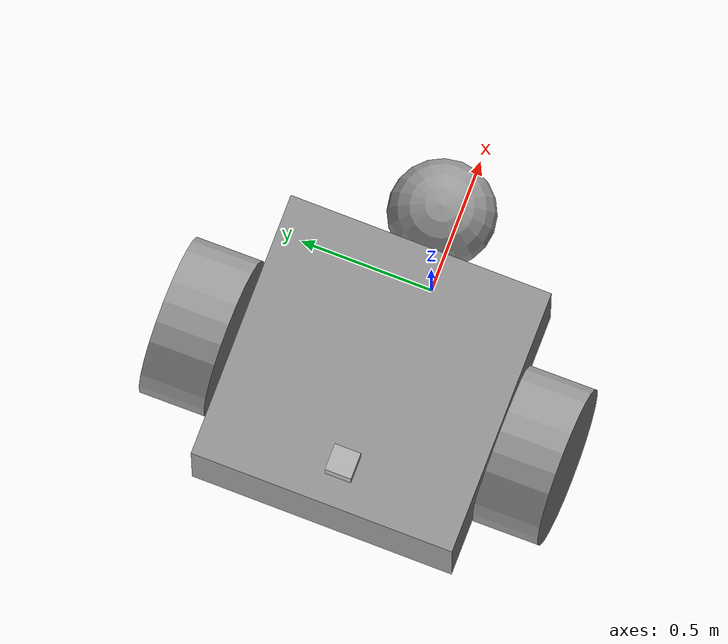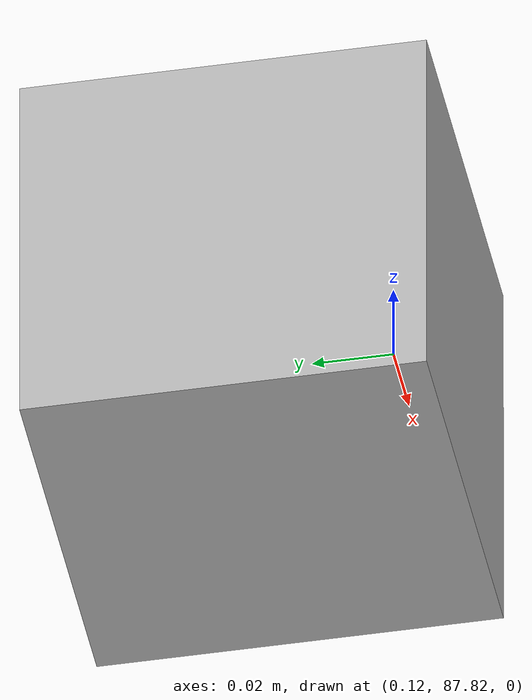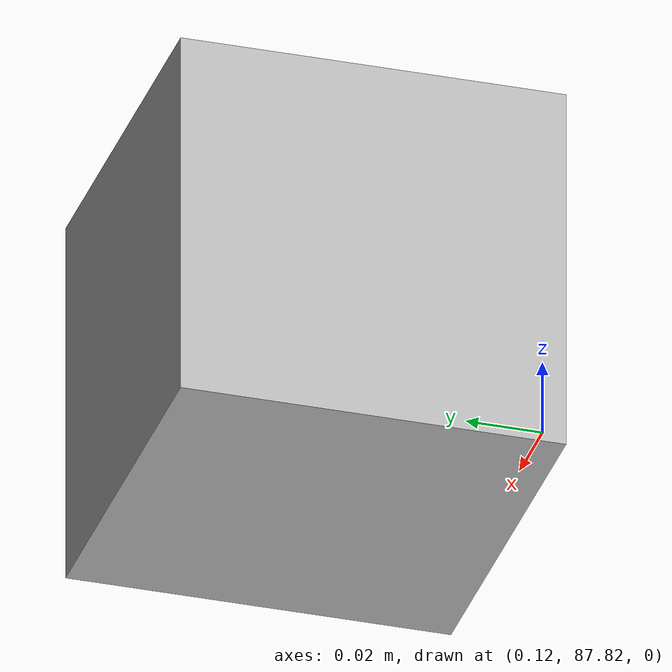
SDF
<?xml version='1.0'?>
<sdf version='1.7'>
  <model name='first_model'>
    <static>false</static>
    <link name='link_0'>
      <inertial>
        <mass>0.589347</mass>
        <inertia>
          <ixx>0.0661703</ixx>
          <ixy>0</ixy>
          <ixz>0</ixz>
          <iyy>0.0661703</iyy>
          <iyz>0</iyz>
          <izz>0.0982245</izz>
        </inertia>
        <pose>0 0 0 0 -0 0</pose>
      </inertial>
      <pose>-0.411578 0.073595 0.096774 0 -0 0</pose>
      <gravity>1</gravity>
      <self_collide>0</self_collide>
      <kinematic>0</kinematic>
      <enable_wind>0</enable_wind>
      <visual name='visual'>
        <pose>0 0 0 0 -0 0</pose>
        <geometry>
          <box>
            <size>1 1 0.589346</size>
          </box>
        </geometry>
        <material>
          <lighting>1</lighting>
          <script>
            <uri>file://media/materials/scripts/gazebo.material</uri>
            <name>Gazebo/Grey</name>
          </script>
          <shader type='pixel'>
            <normal_map>__default__</normal_map>
          </shader>
          <ambient>0.3 0.3 0.3 1</ambient>
          <diffuse>0.7 0.7 0.7 1</diffuse>
          <specular>0.01 0.01 0.01 1</specular>
          <emissive>0 0 0 1</emissive>
        </material>
        <transparency>0</transparency>
        <cast_shadows>1</cast_shadows>
      </visual>
      <collision name='collision'>
        <laser_retro>0</laser_retro>
        <max_contacts>10</max_contacts>
        <pose>0 0 0 0 -0 0</pose>
        <geometry>
          <box>
            <size>1 1 0.589346</size>
          </box>
        </geometry>
        <surface>
          <friction>
            <ode>
              <mu>1</mu>
              <mu2>1</mu2>
              <fdir1>0 0 0</fdir1>
              <slip1>0</slip1>
              <slip2>0</slip2>
            </ode>
            <torsional>
              <coefficient>1</coefficient>
              <patch_radius>0</patch_radius>
              <surface_radius>0</surface_radius>
              <use_patch_radius>1</use_patch_radius>
              <ode>
                <slip>0</slip>
              </ode>
            </torsional>
          </friction>
          <bounce>
            <restitution_coefficient>0</restitution_coefficient>
            <threshold>1e+06</threshold>
          </bounce>
          <contact>
            <collide_without_contact>0</collide_without_contact>
            <collide_without_contact_bitmask>1</collide_without_contact_bitmask>
            <collide_bitmask>1</collide_bitmask>
            <ode>
              <soft_cfm>0</soft_cfm>
              <soft_erp>0.2</soft_erp>
              <kp>1e+13</kp>
              <kd>1</kd>
              <max_vel>0.01</max_vel>
              <min_depth>0</min_depth>
            </ode>
            <bullet>
              <split_impulse>1</split_impulse>
              <split_impulse_penetration_threshold>-0.01</split_impulse_penetration_threshold>
              <soft_cfm>0</soft_cfm>
              <soft_erp>0.2</soft_erp>
              <kp>1e+13</kp>
              <kd>1</kd>
            </bullet>
          </contact>
        </surface>
      </collision>
    </link>
    <link name='link_2'>
      <inertial>
        <mass>1</mass>
        <inertia>
          <ixx>0.145833</ixx>
          <ixy>0</ixy>
          <ixz>0</ixz>
          <iyy>0.145833</iyy>
          <iyz>0</iyz>
          <izz>0.125</izz>
        </inertia>
        <pose>0 0 0 0 -0 0</pose>
      </inertial>
      <pose>-0.426969 -0.562126 -0.003421 1.507 -0 0</pose>
      <gravity>1</gravity>
      <self_collide>0</self_collide>
      <kinematic>0</kinematic>
      <enable_wind>0</enable_wind>
      <visual name='visual'>
        <pose>0 0 0 0 -0 0</pose>
        <geometry>
          <cylinder>
            <radius>0.3</radius>
            <length>0.25</length>
          </cylinder>
        </geometry>
        <material>
          <lighting>1</lighting>
          <script>
            <uri>file://media/materials/scripts/gazebo.material</uri>
            <name>Gazebo/Grey</name>
          </script>
          <shader type='pixel'>
            <normal_map>__default__</normal_map>
          </shader>
          <ambient>0.3 0.3 0.3 1</ambient>
          <diffuse>0.7 0.7 0.7 1</diffuse>
          <specular>0.01 0.01 0.01 1</specular>
          <emissive>0 0 0 1</emissive>
        </material>
        <transparency>0</transparency>
        <cast_shadows>1</cast_shadows>
      </visual>
      <collision name='collision'>
        <laser_retro>0</laser_retro>
        <max_contacts>10</max_contacts>
        <pose>0 0 0 0 -0 0</pose>
        <geometry>
          <cylinder>
            <radius>0.3</radius>
            <length>0.25</length>
          </cylinder>
        </geometry>
        <surface>
          <friction>
            <ode>
              <mu>1</mu>
              <mu2>1</mu2>
              <fdir1>0 0 0</fdir1>
              <slip1>0</slip1>
              <slip2>0</slip2>
            </ode>
            <torsional>
              <coefficient>1</coefficient>
              <patch_radius>0</patch_radius>
              <surface_radius>0</surface_radius>
              <use_patch_radius>1</use_patch_radius>
              <ode>
                <slip>0</slip>
              </ode>
            </torsional>
          </friction>
          <bounce>
            <restitution_coefficient>0</restitution_coefficient>
            <threshold>1e+06</threshold>
          </bounce>
          <contact>
            <collide_without_contact>0</collide_without_contact>
            <collide_without_contact_bitmask>1</collide_without_contact_bitmask>
            <collide_bitmask>1</collide_bitmask>
            <ode>
              <soft_cfm>0</soft_cfm>
              <soft_erp>0.2</soft_erp>
              <kp>1e+13</kp>
              <kd>1</kd>
              <max_vel>0.01</max_vel>
              <min_depth>0</min_depth>
            </ode>
            <bullet>
              <split_impulse>1</split_impulse>
              <split_impulse_penetration_threshold>-0.01</split_impulse_penetration_threshold>
              <soft_cfm>0</soft_cfm>
              <soft_erp>0.2</soft_erp>
              <kp>1e+13</kp>
              <kd>1</kd>
            </bullet>
          </contact>
        </surface>
      </collision>
    </link>
    <link name='link_3'>
      <inertial>
        <mass>1</mass>
        <inertia>
          <ixx>0.145833</ixx>
          <ixy>0</ixy>
          <ixz>0</ixz>
          <iyy>0.145833</iyy>
          <iyz>0</iyz>
          <izz>0.125</izz>
        </inertia>
        <pose>0 0 0 0 -0 0</pose>
      </inertial>
      <pose>-0.418499 0.724637 -0.003226 1.507 -0 0</pose>
      <gravity>1</gravity>
      <self_collide>0</self_collide>
      <kinematic>0</kinematic>
      <enable_wind>0</enable_wind>
      <visual name='visual'>
        <pose>0 0 0 0 -0 0</pose>
        <geometry>
          <cylinder>
            <radius>0.3</radius>
            <length>0.25</length>
          </cylinder>
        </geometry>
        <material>
          <lighting>1</lighting>
          <script>
            <uri>file://media/materials/scripts/gazebo.material</uri>
            <name>Gazebo/Grey</name>
          </script>
          <shader type='pixel'>
            <normal_map>__default__</normal_map>
          </shader>
          <ambient>0.3 0.3 0.3 1</ambient>
          <diffuse>0.7 0.7 0.7 1</diffuse>
          <specular>0.01 0.01 0.01 1</specular>
          <emissive>0 0 0 1</emissive>
        </material>
        <transparency>0</transparency>
        <cast_shadows>1</cast_shadows>
      </visual>
      <collision name='collision'>
        <laser_retro>0</laser_retro>
        <max_contacts>10</max_contacts>
        <pose>0 0 0 0 -0 0</pose>
        <geometry>
          <cylinder>
            <radius>0.3</radius>
            <length>0.24</length>
          </cylinder>
        </geometry>
        <surface>
          <friction>
            <ode>
              <mu>1</mu>
              <mu2>1</mu2>
              <fdir1>0 0 0</fdir1>
              <slip1>0</slip1>
              <slip2>0</slip2>
            </ode>
            <torsional>
              <coefficient>1</coefficient>
              <patch_radius>0</patch_radius>
              <surface_radius>0</surface_radius>
              <use_patch_radius>1</use_patch_radius>
              <ode>
                <slip>0</slip>
              </ode>
            </torsional>
          </friction>
          <bounce>
            <restitution_coefficient>0</restitution_coefficient>
            <threshold>1e+06</threshold>
          </bounce>
          <contact>
            <collide_without_contact>0</collide_without_contact>
            <collide_without_contact_bitmask>1</collide_without_contact_bitmask>
            <collide_bitmask>1</collide_bitmask>
            <ode>
              <soft_cfm>0</soft_cfm>
              <soft_erp>0.2</soft_erp>
              <kp>1e+13</kp>
              <kd>1</kd>
              <max_vel>0.01</max_vel>
              <min_depth>0</min_depth>
            </ode>
            <bullet>
              <split_impulse>1</split_impulse>
              <split_impulse_penetration_threshold>-0.01</split_impulse_penetration_threshold>
              <soft_cfm>0</soft_cfm>
              <soft_erp>0.2</soft_erp>
              <kp>1e+13</kp>
              <kd>1</kd>
            </bullet>
          </contact>
        </surface>
      </collision>
    </link>
    <link name='link_5'>
      <inertial>
        <mass>1</mass>
        <inertia>
          <ixx>0.1</ixx>
          <ixy>0</ixy>
          <ixz>0</ixz>
          <iyy>0.1</iyy>
          <iyz>0</iyz>
          <izz>0.1</izz>
        </inertia>
        <pose>0 0 0 0 -0 0</pose>
      </inertial>
      <pose>0.290306 0.069306 -0.096827 0 -0 0</pose>
      <gravity>1</gravity>
      <self_collide>0</self_collide>
      <kinematic>0</kinematic>
      <enable_wind>0</enable_wind>
      <visual name='visual'>
        <pose>0 0 0 0 -0 0</pose>
        <geometry>
          <sphere>
            <radius>0.2</radius>
          </sphere>
        </geometry>
        <material>
          <lighting>1</lighting>
          <script>
            <uri>file://media/materials/scripts/gazebo.material</uri>
            <name>Gazebo/Grey</name>
          </script>
          <shader type='pixel'>
            <normal_map>__default__</normal_map>
          </shader>
          <ambient>0.3 0.3 0.3 1</ambient>
          <diffuse>0.7 0.7 0.7 1</diffuse>
          <specular>0.01 0.01 0.01 1</specular>
          <emissive>0 0 0 1</emissive>
        </material>
        <transparency>0</transparency>
        <cast_shadows>1</cast_shadows>
      </visual>
      <collision name='collision'>
        <laser_retro>0</laser_retro>
        <max_contacts>10</max_contacts>
        <pose>0 0 0 0 -0 0</pose>
        <geometry>
          <sphere>
            <radius>0.2</radius>
          </sphere>
        </geometry>
        <surface>
          <friction>
            <ode>
              <mu>1</mu>
              <mu2>1</mu2>
              <fdir1>0 0 0</fdir1>
              <slip1>0</slip1>
              <slip2>0</slip2>
            </ode>
            <torsional>
              <coefficient>1</coefficient>
              <patch_radius>0</patch_radius>
              <surface_radius>0</surface_radius>
              <use_patch_radius>1</use_patch_radius>
              <ode>
                <slip>0</slip>
              </ode>
            </torsional>
          </friction>
          <bounce>
            <restitution_coefficient>0</restitution_coefficient>
            <threshold>1e+06</threshold>
          </bounce>
          <contact>
            <collide_without_contact>0</collide_without_contact>
            <collide_without_contact_bitmask>1</collide_without_contact_bitmask>
            <collide_bitmask>1</collide_bitmask>
            <ode>
              <soft_cfm>0</soft_cfm>
              <soft_erp>0.2</soft_erp>
              <kp>1e+13</kp>
              <kd>1</kd>
              <max_vel>0.01</max_vel>
              <min_depth>0</min_depth>
            </ode>
            <bullet>
              <split_impulse>1</split_impulse>
              <split_impulse_penetration_threshold>-0.01</split_impulse_penetration_threshold>
              <soft_cfm>0</soft_cfm>
              <soft_erp>0.2</soft_erp>
              <kp>1e+13</kp>
              <kd>1</kd>
            </bullet>
          </contact>
        </surface>
      </collision>
    </link>
    <model name='depth_camera'>
      <link name='link'>
        <pose>0 0 0.05 0 -0 0</pose>
        <inertial>
          <mass>0.1</mass>
          <inertia>
            <ixx>0.000166667</ixx>
            <iyy>0.000166667</iyy>
            <izz>0.000166667</izz>
            <ixy>0</ixy>
            <ixz>0</ixz>
            <iyz>0</iyz>
          </inertia>
          <pose>0 0 0 0 -0 0</pose>
        </inertial>
        <collision name='collision'>
          <geometry>
            <box>
              <size>0.1 0.1 0.1</size>
            </box>
          </geometry>
          <max_contacts>10</max_contacts>
          <surface>
            <contact>
              <ode/>
            </contact>
            <bounce/>
            <friction>
              <torsional>
                <ode/>
              </torsional>
              <ode/>
            </friction>
          </surface>
        </collision>
        <visual name='visual'>
          <geometry>
            <box>
              <size>0.1 0.1 0.1</size>
            </box>
          </geometry>
        </visual>
        <sensor name='camera' type='depth'>
          <camera>
            <horizontal_fov>1.047</horizontal_fov>
            <image>
              <width>320</width>
              <height>240</height>
            </image>
            <clip>
              <near>0.1</near>
              <far>100</far>
            </clip>
          </camera>
          <always_on>1</always_on>
          <update_rate>30</update_rate>
          <visualize>1</visualize>
        </sensor>
        <self_collide>0</self_collide>
        <enable_wind>0</enable_wind>
        <kinematic>0</kinematic>
      </link>
      <pose>0.173951 87.8627 -0 0 -0 0</pose>
    </model>
    <model name='depth_camera_1'>
      <link name='link'>
        <pose>0 0 0.05 0 -0 0</pose>
        <inertial>
          <mass>0.1</mass>
          <inertia>
            <ixx>0.000166667</ixx>
            <iyy>0.000166667</iyy>
            <izz>0.000166667</izz>
            <ixy>0</ixy>
            <ixz>0</ixz>
            <iyz>0</iyz>
          </inertia>
          <pose>0 0 0 0 -0 0</pose>
        </inertial>
        <collision name='collision'>
          <geometry>
            <box>
              <size>0.1 0.1 0.1</size>
            </box>
          </geometry>
          <max_contacts>10</max_contacts>
          <surface>
            <contact>
              <ode/>
            </contact>
            <bounce/>
            <friction>
              <torsional>
                <ode/>
              </torsional>
              <ode/>
            </friction>
          </surface>
        </collision>
        <visual name='visual'>
          <geometry>
            <box>
              <size>0.1 0.1 0.1</size>
            </box>
          </geometry>
        </visual>
        <sensor name='camera' type='depth'>
          <camera>
            <horizontal_fov>1.047</horizontal_fov>
            <image>
              <width>320</width>
              <height>240</height>
            </image>
            <clip>
              <near>0.1</near>
              <far>100</far>
            </clip>
          </camera>
          <always_on>1</always_on>
          <update_rate>30</update_rate>
          <visualize>1</visualize>
        </sensor>
        <self_collide>0</self_collide>
        <enable_wind>0</enable_wind>
        <kinematic>0</kinematic>
      </link>
      <pose>-0.758849 0.049569 0.397373 0 -0 0</pose>
    </model>
    <joint name='link_0_JOINT_2' type='revolute'>
      <parent>link_0</parent>
      <child>link_2</child>
      <pose>0 0 0 0 -0 0</pose>
      <axis>
        <xyz>1 0 1</xyz>
        <limit>
          <lower>-1.79769e+308</lower>
          <upper>1.79769e+308</upper>
          <effort>-1</effort>
          <velocity>-1</velocity>
        </limit>
        <dynamics>
          <spring_reference>0</spring_reference>
          <spring_stiffness>0</spring_stiffness>
          <damping>0</damping>
          <friction>0</friction>
        </dynamics>
      </axis>
      <physics>
        <ode>
          <limit>
            <cfm>0</cfm>
            <erp>0.2</erp>
          </limit>
          <suspension>
            <cfm>0</cfm>
            <erp>0.2</erp>
          </suspension>
        </ode>
      </physics>
    </joint>
    <joint name='link_0_JOINT_3' type='revolute'>
      <parent>link_0</parent>
      <child>link_3</child>
      <pose>0 0 0 0 -0 0</pose>
      <axis>
        <xyz>0 0 1</xyz>
        <limit>
          <lower>-1.79769e+308</lower>
          <upper>1.79769e+308</upper>
          <effort>-1</effort>
          <velocity>-1</velocity>
        </limit>
        <dynamics>
          <spring_reference>0</spring_reference>
          <spring_stiffness>0</spring_stiffness>
          <damping>0</damping>
          <friction>0</friction>
        </dynamics>
      </axis>
      <physics>
        <ode>
          <limit>
            <cfm>0</cfm>
            <erp>0.2</erp>
          </limit>
          <suspension>
            <cfm>0</cfm>
            <erp>0.2</erp>
          </suspension>
        </ode>
      </physics>
    </joint>
    <joint name='link_0_JOINT_4' type='revolute'>
      <parent>link_0</parent>
      <child>link_3</child>
      <pose>0 0 0 0 -0 0</pose>
      <axis>
        <xyz>0.06 0 1</xyz>
        <limit>
          <lower>-1.79769e+308</lower>
          <upper>1.79769e+308</upper>
          <effort>-1</effort>
          <velocity>-1</velocity>
        </limit>
        <dynamics>
          <spring_reference>0</spring_reference>
          <spring_stiffness>0</spring_stiffness>
          <damping>0</damping>
          <friction>0</friction>
        </dynamics>
      </axis>
      <physics>
        <ode>
          <limit>
            <cfm>0</cfm>
            <erp>0.2</erp>
          </limit>
          <suspension>
            <cfm>0</cfm>
            <erp>0.2</erp>
          </suspension>
        </ode>
      </physics>
    </joint>
    <joint name='link_0_JOINT_7' type='ball'>
      <parent>link_0</parent>
      <child>link_5</child>
      <pose>0 0 0 0 -0 0</pose>
      <physics>
        <ode>
          <limit>
            <cfm>0</cfm>
            <erp>0.2</erp>
          </limit>
          <suspension>
            <cfm>0</cfm>
            <erp>0.2</erp>
          </suspension>
        </ode>
      </physics>
    </joint>
    <joint name='link_0_JOINT_8' type='fixed'>
      <parent>link_0</parent>
      <child>depth_camera_1::link</child>
      <pose>0 0 0 0 -0 0</pose>
      <physics>
        <ode>
          <limit>
            <cfm>0</cfm>
            <erp>0.2</erp>
          </limit>
          <suspension>
            <cfm>0</cfm>
            <erp>0.2</erp>
          </suspension>
        </ode>
      </physics>
    </joint>
    <static>0</static>
    <allow_auto_disable>1</allow_auto_disable>
    <plugin name='follower' filename='libFollowerPlugin.so'/>
  </model>
</sdf>
